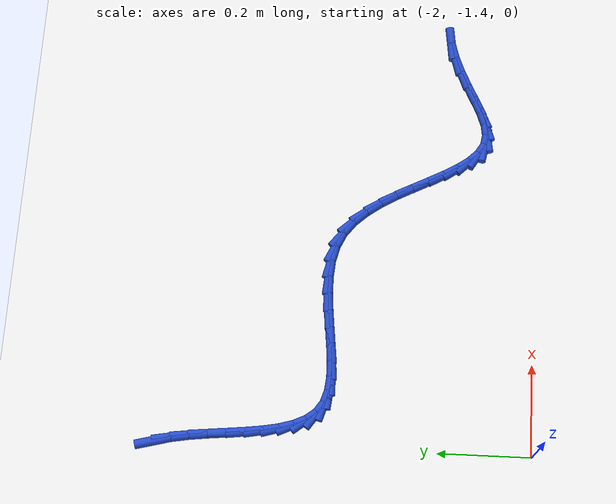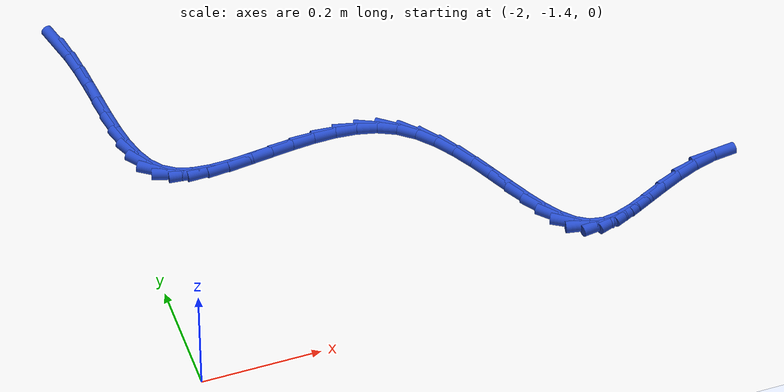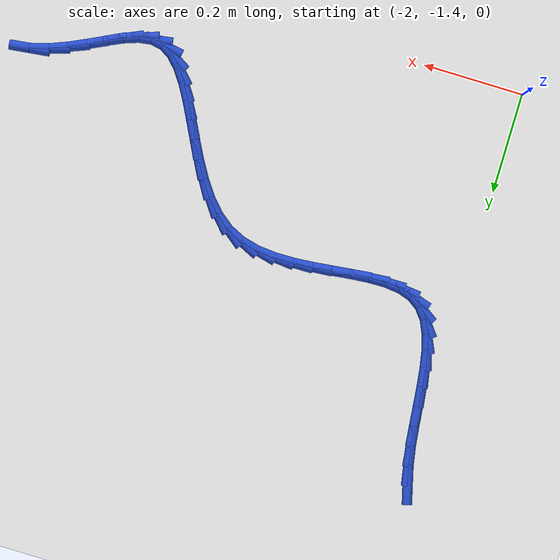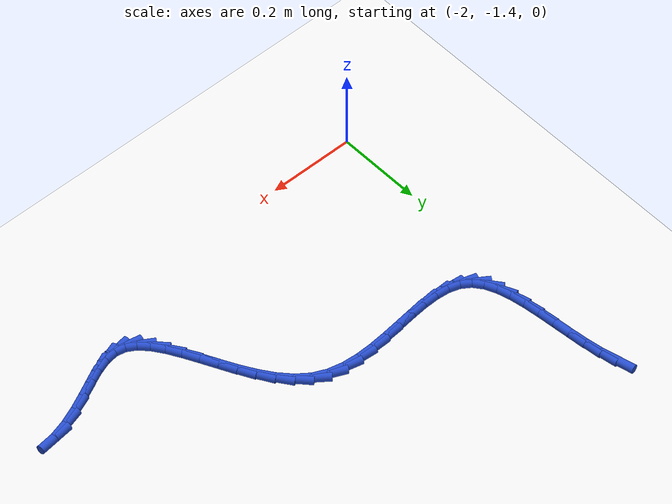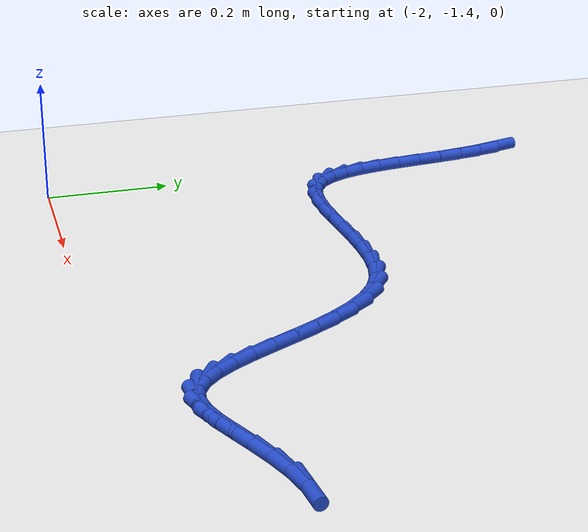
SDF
<sdf version="1.6">
 <world name="default">
  <model name="ground_plane">
   <static>1</static>
   <link name="link">
    <collision name="collision">
     <geometry><plane><normal>0 0 1</normal><size>100 100</size></plane></geometry>
     <surface><friction><ode><mu>100</mu><mu2>50</mu2></ode></friction></surface>
    </collision>
    <visual name="visual">
     <cast_shadows>0</cast_shadows>
     <geometry><plane><normal>0 0 1</normal><size>100 100</size></plane></geometry>
     <material>
      <script><uri>file://media/materials/scripts/gazebo.material</uri><name>Gazebo/WhiteGlow</name></script>
     </material>
    </visual>
   </link>
  </model>
  <model name="line">
   <link name="link_149">
    <pose>-2.0045452432831055 -0.6046154810929244 0.01 0 1.57 -1.3192804350647724</pose>
    <collision name="collision">
     <geometry><cylinder><radius>0.01</radius><length>0.08</length></cylinder></geometry>
    </collision>
    <visual name="visual">
     <material>
      <script><name>Gazebo/Blue</name><uri>file://media/materials/scripts/gazebo.material</uri></script>
     </material>
     <geometry><cylinder><radius>0.01</radius><length>0.08</length></cylinder></geometry>
    </visual>
   </link>
   <link name="link_150">
    <pose>-1.995484114444345 -0.6398786541049419 0.01 0 1.57 -1.398004723560413</pose>
    <collision name="collision">
     <geometry><cylinder><radius>0.01</radius><length>0.08</length></cylinder></geometry>
    </collision>
    <visual name="visual">
     <material>
      <script><name>Gazebo/Blue</name><uri>file://media/materials/scripts/gazebo.material</uri></script>
     </material>
     <geometry><cylinder><radius>0.01</radius><length>0.08</length></cylinder></geometry>
    </visual>
   </link>
   <link name="link_151">
    <pose>-1.9889228668107577 -0.6774720184620824 0.01 0 1.57 -1.4459613871156625</pose>
    <collision name="collision">
     <geometry><cylinder><radius>0.01</radius><length>0.08</length></cylinder></geometry>
    </collision>
    <visual name="visual">
     <material>
      <script><name>Gazebo/Blue</name><uri>file://media/materials/scripts/gazebo.material</uri></script>
     </material>
     <geometry><cylinder><radius>0.01</radius><length>0.08</length></cylinder></geometry>
    </visual>
   </link>
   <link name="link_152">
    <pose>-1.9840360137064457 -0.7164149740078907 0.01 0 1.57 -1.4684398144890596</pose>
    <collision name="collision">
     <geometry><cylinder><radius>0.01</radius><length>0.08</length></cylinder></geometry>
    </collision>
    <visual name="visual">
     <material>
      <script><name>Gazebo/Blue</name><uri>file://media/materials/scripts/gazebo.material</uri></script>
     </material>
     <geometry><cylinder><radius>0.01</radius><length>0.08</length></cylinder></geometry>
    </visual>
   </link>
   <link name="link_153">
    <pose>-1.979998068447896 -0.7557269205776137 0.01 0 1.57 -1.467432454817593</pose>
    <collision name="collision">
     <geometry><cylinder><radius>0.01</radius><length>0.08</length></cylinder></geometry>
    </collision>
    <visual name="visual">
     <material>
      <script><name>Gazebo/Blue</name><uri>file://media/materials/scripts/gazebo.material</uri></script>
     </material>
     <geometry><cylinder><radius>0.01</radius><length>0.08</length></cylinder></geometry>
    </visual>
   </link>
   <link name="link_154">
    <pose>-1.9759835443515976 -0.7944272580064987 0.01 0 1.57 -1.441719207466596</pose>
    <collision name="collision">
     <geometry><cylinder><radius>0.01</radius><length>0.08</length></cylinder></geometry>
    </collision>
    <visual name="visual">
     <material>
      <script><name>Gazebo/Blue</name><uri>file://media/materials/scripts/gazebo.material</uri></script>
     </material>
     <geometry><cylinder><radius>0.01</radius><length>0.08</length></cylinder></geometry>
    </visual>
   </link>
   <link name="link_155">
    <pose>-1.9711669547340378 -0.8315353861297923 0.01 0 1.57 -1.3863221114342668</pose>
    <collision name="collision">
     <geometry><cylinder><radius>0.01</radius><length>0.08</length></cylinder></geometry>
    </collision>
    <visual name="visual">
     <material>
      <script><name>Gazebo/Blue</name><uri>file://media/materials/scripts/gazebo.material</uri></script>
     </material>
     <geometry><cylinder><radius>0.01</radius><length>0.08</length></cylinder></geometry>
    </visual>
   </link>
   <link name="link_156">
    <pose>-1.964722812911704 -0.8660707047827415 0.01 0 1.57 -1.291148179209054</pose>
    <collision name="collision">
     <geometry><cylinder><radius>0.01</radius><length>0.08</length></cylinder></geometry>
    </collision>
    <visual name="visual">
     <material>
      <script><name>Gazebo/Blue</name><uri>file://media/materials/scripts/gazebo.material</uri></script>
     </material>
     <geometry><cylinder><radius>0.01</radius><length>0.08</length></cylinder></geometry>
    </visual>
   </link>
   <link name="link_157">
    <pose>-1.9558256322010852 -0.8970526138005934 0.01 0 1.57 -1.139355775563799</pose>
    <collision name="collision">
     <geometry><cylinder><radius>0.01</radius><length>0.08</length></cylinder></geometry>
    </collision>
    <visual name="visual">
     <material>
      <script><name>Gazebo/Blue</name><uri>file://media/materials/scripts/gazebo.material</uri></script>
     </material>
     <geometry><cylinder><radius>0.01</radius><length>0.08</length></cylinder></geometry>
    </visual>
   </link>
   <link name="link_158">
    <pose>-1.9436499259186686 -0.9235005130185953 0.01 0 1.57 -0.9098046133484246</pose>
    <collision name="collision">
     <geometry><cylinder><radius>0.01</radius><length>0.08</length></cylinder></geometry>
    </collision>
    <visual name="visual">
     <material>
      <script><name>Gazebo/Blue</name><uri>file://media/materials/scripts/gazebo.material</uri></script>
     </material>
     <geometry><cylinder><radius>0.01</radius><length>0.08</length></cylinder></geometry>
    </visual>
   </link>
   <link name="link_159">
    <pose>-1.9273702073809411 -0.9444338022719934 0.01 0 1.57 -0.6003600596885537</pose>
    <collision name="collision">
     <geometry><cylinder><radius>0.01</radius><length>0.08</length></cylinder></geometry>
    </collision>
    <visual name="visual">
     <material>
      <script><name>Gazebo/Blue</name><uri>file://media/materials/scripts/gazebo.material</uri></script>
     </material>
     <geometry><cylinder><radius>0.01</radius><length>0.08</length></cylinder></geometry>
    </visual>
   </link>
   <link name="link_160">
    <pose>-1.9062012047593775 -0.9589274884972377 0.01 0 1.57 -0.3066486417118014</pose>
    <collision name="collision">
     <geometry><cylinder><radius>0.01</radius><length>0.08</length></cylinder></geometry>
    </collision>
    <visual name="visual">
     <material>
      <script><name>Gazebo/Blue</name><uri>file://media/materials/scripts/gazebo.material</uri></script>
     </material>
     <geometry><cylinder><radius>0.01</radius><length>0.08</length></cylinder></geometry>
    </visual>
   </link>
   <link name="link_161">
    <pose>-1.8801641447035973 -0.9671717646114304 0.01 0 1.57 -0.10631278100643729</pose>
    <collision name="collision">
     <geometry><cylinder><radius>0.01</radius><length>0.08</length></cylinder></geometry>
    </collision>
    <visual name="visual">
     <material>
      <script><name>Gazebo/Blue</name><uri>file://media/materials/scripts/gazebo.material</uri></script>
     </material>
     <geometry><cylinder><radius>0.01</radius><length>0.08</length></cylinder></geometry>
    </visual>
   </link>
   <link name="link_162">
    <pose>-1.8500259707626139 -0.9703879637684802 0.01 0 1.57 0.016496947019342</pose>
    <collision name="collision">
     <geometry><cylinder><radius>0.01</radius><length>0.08</length></cylinder></geometry>
    </collision>
    <visual name="visual">
     <material>
      <script><name>Gazebo/Blue</name><uri>file://media/materials/scripts/gazebo.material</uri></script>
     </material>
     <geometry><cylinder><radius>0.01</radius><length>0.08</length></cylinder></geometry>
    </visual>
   </link>
   <link name="link_163">
    <pose>-1.8165816616230892 -0.9698361847161784 0.01 0 1.57 0.0848912699933903</pose>
    <collision name="collision">
     <geometry><cylinder><radius>0.01</radius><length>0.08</length></cylinder></geometry>
    </collision>
    <visual name="visual">
     <material>
      <script><name>Gazebo/Blue</name><uri>file://media/materials/scripts/gazebo.material</uri></script>
     </material>
     <geometry><cylinder><radius>0.01</radius><length>0.08</length></cylinder></geometry>
    </visual>
   </link>
   <link name="link_164">
    <pose>-1.7806261959716843 -0.9667765262023151 0.01 0 1.57 0.11384725682624526</pose>
    <collision name="collision">
     <geometry><cylinder><radius>0.01</radius><length>0.08</length></cylinder></geometry>
    </collision>
    <visual name="visual">
     <material>
      <script><name>Gazebo/Blue</name><uri>file://media/materials/scripts/gazebo.material</uri></script>
     </material>
     <geometry><cylinder><radius>0.01</radius><length>0.08</length></cylinder></geometry>
    </visual>
   </link>
   <link name="link_165">
    <pose>-1.7429545524950603 -0.9624690869746818 0.01 0 1.57 0.11083709206058256</pose>
    <collision name="collision">
     <geometry><cylinder><radius>0.01</radius><length>0.08</length></cylinder></geometry>
    </collision>
    <visual name="visual">
     <material>
      <script><name>Gazebo/Blue</name><uri>file://media/materials/scripts/gazebo.material</uri></script>
     </material>
     <geometry><cylinder><radius>0.01</radius><length>0.08</length></cylinder></geometry>
    </visual>
   </link>
   <link name="link_166">
    <pose>-1.7043617098798798 -0.9581739657810697 0.01 0 1.57 0.07790958394766717</pose>
    <collision name="collision">
     <geometry><cylinder><radius>0.01</radius><length>0.08</length></cylinder></geometry>
    </collision>
    <visual name="visual">
     <material>
      <script><name>Gazebo/Blue</name><uri>file://media/materials/scripts/gazebo.material</uri></script>
     </material>
     <geometry><cylinder><radius>0.01</radius><length>0.08</length></cylinder></geometry>
    </visual>
   </link>
   <link name="link_167">
    <pose>-1.665642646812803 -0.9551512613692691 0.01 0 1.57 0.012881940614114695</pose>
    <collision name="collision">
     <geometry><cylinder><radius>0.01</radius><length>0.08</length></cylinder></geometry>
    </collision>
    <visual name="visual">
     <material>
      <script><name>Gazebo/Blue</name><uri>file://media/materials/scripts/gazebo.material</uri></script>
     </material>
     <geometry><cylinder><radius>0.01</radius><length>0.08</length></cylinder></geometry>
    </visual>
   </link>
   <link name="link_168">
    <pose>-1.627592341980492 -0.9546610724870713 0.01 0 1.57 -0.09001938064380854</pose>
    <collision name="collision">
     <geometry><cylinder><radius>0.01</radius><length>0.08</length></cylinder></geometry>
    </collision>
    <visual name="visual">
     <material>
      <script><name>Gazebo/Blue</name><uri>file://media/materials/scripts/gazebo.material</uri></script>
     </material>
     <geometry><cylinder><radius>0.01</radius><length>0.08</length></cylinder></geometry>
    </visual>
   </link>
   <link name="link_169">
    <pose>-1.5910057740696084 -0.9579634978822672 0.01 0 1.57 -0.23875014392820265</pose>
    <collision name="collision">
     <geometry><cylinder><radius>0.01</radius><length>0.08</length></cylinder></geometry>
    </collision>
    <visual name="visual">
     <material>
      <script><name>Gazebo/Blue</name><uri>file://media/materials/scripts/gazebo.material</uri></script>
     </material>
     <geometry><cylinder><radius>0.01</radius><length>0.08</length></cylinder></geometry>
    </visual>
   </link>
   <link name="link_170">
    <pose>-1.5566779217668127 -0.9663186363026477 0.01 0 1.57 -0.4384576620966334</pose>
    <collision name="collision">
     <geometry><cylinder><radius>0.01</radius><length>0.08</length></cylinder></geometry>
    </collision>
    <visual name="visual">
     <material>
      <script><name>Gazebo/Blue</name><uri>file://media/materials/scripts/gazebo.material</uri></script>
     </material>
     <geometry><cylinder><radius>0.01</radius><length>0.08</length></cylinder></geometry>
    </visual>
   </link>
   <link name="link_171">
    <pose>-1.525402333497008 -0.9809836883341301 0.01 0 1.57 -0.6582321091100797</pose>
    <collision name="collision">
     <geometry><cylinder><radius>0.01</radius><length>0.08</length></cylinder></geometry>
    </collision>
    <visual name="visual">
     <material>
      <script><name>Gazebo/Blue</name><uri>file://media/materials/scripts/gazebo.material</uri></script>
     </material>
     <geometry><cylinder><radius>0.01</radius><length>0.08</length></cylinder></geometry>
    </visual>
   </link>
   <link name="link_172">
    <pose>-1.497607726613476 -1.002476591630641 0.01 0 1.57 -0.8314913542842709</pose>
    <collision name="collision">
     <geometry><cylinder><radius>0.01</radius><length>0.08</length></cylinder></geometry>
    </collision>
    <visual name="visual">
     <material>
      <script><name>Gazebo/Blue</name><uri>file://media/materials/scripts/gazebo.material</uri></script>
     </material>
     <geometry><cylinder><radius>0.01</radius><length>0.08</length></cylinder></geometry>
    </visual>
   </link>
   <link name="link_173">
    <pose>-1.4728762649666245 -1.0295998991837014 0.01 0 1.57 -0.9539579778991052</pose>
    <collision name="collision">
     <geometry><cylinder><radius>0.01</radius><length>0.08</length></cylinder></geometry>
    </collision>
    <visual name="visual">
     <material>
      <script><name>Gazebo/Blue</name><uri>file://media/materials/scripts/gazebo.material</uri></script>
     </material>
     <geometry><cylinder><radius>0.01</radius><length>0.08</length></cylinder></geometry>
    </visual>
   </link>
   <link name="link_174">
    <pose>-1.4506703446819937 -1.0609134767623591 0.01 0 1.57 -1.0351445703841795</pose>
    <collision name="collision">
     <geometry><cylinder><radius>0.01</radius><length>0.08</length></cylinder></geometry>
    </collision>
    <visual name="visual">
     <material>
      <script><name>Gazebo/Blue</name><uri>file://media/materials/scripts/gazebo.material</uri></script>
     </material>
     <geometry><cylinder><radius>0.01</radius><length>0.08</length></cylinder></geometry>
    </visual>
   </link>
   <link name="link_175">
    <pose>-1.4304523618851237 -1.094977190135662 0.01 0 1.57 -1.0830057080154314</pose>
    <collision name="collision">
     <geometry><cylinder><radius>0.01</radius><length>0.08</length></cylinder></geometry>
    </collision>
    <visual name="visual">
     <material>
      <script><name>Gazebo/Blue</name><uri>file://media/materials/scripts/gazebo.material</uri></script>
     </material>
     <geometry><cylinder><radius>0.01</radius><length>0.08</length></cylinder></geometry>
    </visual>
   </link>
   <link name="link_176">
    <pose>-1.4116847127015555 -1.1303509050726575 0.01 0 1.57 -1.1018709128176407</pose>
    <collision name="collision">
     <geometry><cylinder><radius>0.01</radius><length>0.08</length></cylinder></geometry>
    </collision>
    <visual name="visual">
     <material>
      <script><name>Gazebo/Blue</name><uri>file://media/materials/scripts/gazebo.material</uri></script>
     </material>
     <geometry><cylinder><radius>0.01</radius><length>0.08</length></cylinder></geometry>
    </visual>
   </link>
   <link name="link_177">
    <pose>-1.3938297932568278 -1.1655944873423953 0.01 0 1.57 -1.0919863055250687</pose>
    <collision name="collision">
     <geometry><cylinder><radius>0.01</radius><length>0.08</length></cylinder></geometry>
    </collision>
    <visual name="visual">
     <material>
      <script><name>Gazebo/Blue</name><uri>file://media/materials/scripts/gazebo.material</uri></script>
     </material>
     <geometry><cylinder><radius>0.01</radius><length>0.08</length></cylinder></geometry>
    </visual>
   </link>
   <link name="link_178">
    <pose>-1.3763499996764814 -1.1992678027139219 0.01 0 1.57 -1.0486901367479298</pose>
    <collision name="collision">
     <geometry><cylinder><radius>0.01</radius><length>0.08</length></cylinder></geometry>
    </collision>
    <visual name="visual">
     <material>
      <script><name>Gazebo/Blue</name><uri>file://media/materials/scripts/gazebo.material</uri></script>
     </material>
     <geometry><cylinder><radius>0.01</radius><length>0.08</length></cylinder></geometry>
    </visual>
   </link>
   <link name="link_179">
    <pose>-1.3587077280860573 -1.2299307169562868 0.01 0 1.57 -0.9602319863508125</pose>
    <collision name="collision">
     <geometry><cylinder><radius>0.01</radius><length>0.08</length></cylinder></geometry>
    </collision>
    <visual name="visual">
     <material>
      <script><name>Gazebo/Blue</name><uri>file://media/materials/scripts/gazebo.material</uri></script>
     </material>
     <geometry><cylinder><radius>0.01</radius><length>0.08</length></cylinder></geometry>
    </visual>
   </link>
   <link name="link_180">
    <pose>-1.3403653746110953 -1.256143095838537 0.01 0 1.57 -0.8039834306781016</pose>
    <collision name="collision">
     <geometry><cylinder><radius>0.01</radius><length>0.08</length></cylinder></geometry>
    </collision>
    <visual name="visual">
     <material>
      <script><name>Gazebo/Blue</name><uri>file://media/materials/scripts/gazebo.material</uri></script>
     </material>
     <geometry><cylinder><radius>0.01</radius><length>0.08</length></cylinder></geometry>
    </visual>
   </link>
   <link name="link_181">
    <pose>-1.3207853353771355 -1.2764648051297205 0.01 0 1.57 -0.5465157859184908</pose>
    <collision name="collision">
     <geometry><cylinder><radius>0.01</radius><length>0.08</length></cylinder></geometry>
    </collision>
    <visual name="visual">
     <material>
      <script><name>Gazebo/Blue</name><uri>file://media/materials/scripts/gazebo.material</uri></script>
     </material>
     <geometry><cylinder><radius>0.01</radius><length>0.08</length></cylinder></geometry>
    </visual>
   </link>
   <link name="link_182">
    <pose>-1.2994300065097186 -1.2894557105988858 0.01 0 1.57 -0.1819665371726969</pose>
    <collision name="collision">
     <geometry><cylinder><radius>0.01</radius><length>0.08</length></cylinder></geometry>
    </collision>
    <visual name="visual">
     <material>
      <script><name>Gazebo/Blue</name><uri>file://media/materials/scripts/gazebo.material</uri></script>
     </material>
     <geometry><cylinder><radius>0.01</radius><length>0.08</length></cylinder></geometry>
    </visual>
   </link>
   <link name="link_183">
    <pose>-1.2757876899392202 -1.2938059420966235 0.01 0 1.57 0.1421115014461923</pose>
    <collision name="collision">
     <geometry><cylinder><radius>0.01</radius><length>0.08</length></cylinder></geometry>
    </collision>
    <visual name="visual">
     <material>
      <script><name>Gazebo/Blue</name><uri>file://media/materials/scripts/gazebo.material</uri></script>
     </material>
     <geometry><cylinder><radius>0.01</radius><length>0.08</length></cylinder></geometry>
    </visual>
   </link>
   <link name="link_184">
    <pose>-1.2497186690784254 -1.290076091575129 0.01 0 1.57 0.33427735148055887</pose>
    <collision name="collision">
     <geometry><cylinder><radius>0.01</radius><length>0.08</length></cylinder></geometry>
    </collision>
    <visual name="visual">
     <material>
      <script><name>Gazebo/Blue</name><uri>file://media/materials/scripts/gazebo.material</uri></script>
     </material>
     <geometry><cylinder><radius>0.01</radius><length>0.08</length></cylinder></geometry>
    </visual>
   </link>
   <link name="link_185">
    <pose>-1.2213617824393925 -1.2802274302704817 0.01 0 1.57 0.4295880688652561</pose>
    <collision name="collision">
     <geometry><cylinder><radius>0.01</radius><length>0.08</length></cylinder></geometry>
    </collision>
    <visual name="visual">
     <material>
      <script><name>Gazebo/Blue</name><uri>file://media/materials/scripts/gazebo.material</uri></script>
     </material>
     <geometry><cylinder><radius>0.01</radius><length>0.08</length></cylinder></geometry>
    </visual>
   </link>
   <link name="link_186">
    <pose>-1.190862597698817 -1.2662550661768404 0.01 0 1.57 0.46002218060914934</pose>
    <collision name="collision">
     <geometry><cylinder><radius>0.01</radius><length>0.08</length></cylinder></geometry>
    </collision>
    <visual name="visual">
     <material>
      <script><name>Gazebo/Blue</name><uri>file://media/materials/scripts/gazebo.material</uri></script>
     </material>
     <geometry><cylinder><radius>0.01</radius><length>0.08</length></cylinder></geometry>
    </visual>
   </link>
   <link name="link_187">
    <pose>-1.158366682533395 -1.2501541072883642 0.01 0 1.57 0.44153632488211</pose>
    <collision name="collision">
     <geometry><cylinder><radius>0.01</radius><length>0.08</length></cylinder></geometry>
    </collision>
    <visual name="visual">
     <material>
      <script><name>Gazebo/Blue</name><uri>file://media/materials/scripts/gazebo.material</uri></script>
     </material>
     <geometry><cylinder><radius>0.01</radius><length>0.08</length></cylinder></geometry>
    </visual>
   </link>
   <link name="link_188">
    <pose>-1.1240196046198219 -1.2339196615992123 0.01 0 1.57 0.37935224801482487</pose>
    <collision name="collision">
     <geometry><cylinder><radius>0.01</radius><length>0.08</length></cylinder></geometry>
    </collision>
    <visual name="visual">
     <material>
      <script><name>Gazebo/Blue</name><uri>file://media/materials/scripts/gazebo.material</uri></script>
     </material>
     <geometry><cylinder><radius>0.01</radius><length>0.08</length></cylinder></geometry>
    </visual>
   </link>
   <link name="link_189">
    <pose>-1.087966931634794 -1.2195468371035438 0.01 0 1.57 0.2726274934649447</pose>
    <collision name="collision">
     <geometry><cylinder><radius>0.01</radius><length>0.08</length></cylinder></geometry>
    </collision>
    <visual name="visual">
     <material>
      <script><name>Gazebo/Blue</name><uri>file://media/materials/scripts/gazebo.material</uri></script>
     </material>
     <geometry><cylinder><radius>0.01</radius><length>0.08</length></cylinder></geometry>
    </visual>
   </link>
   <link name="link_190">
    <pose>-1.0503542312550063 -1.2090307417955177 0.01 0 1.57 0.11894894152995884</pose>
    <collision name="collision">
     <geometry><cylinder><radius>0.01</radius><length>0.08</length></cylinder></geometry>
    </collision>
    <visual name="visual">
     <material>
      <script><name>Gazebo/Blue</name><uri>file://media/materials/scripts/gazebo.material</uri></script>
     </material>
     <geometry><cylinder><radius>0.01</radius><length>0.08</length></cylinder></geometry>
    </visual>
   </link>
  </model>
 </world>
</sdf>
